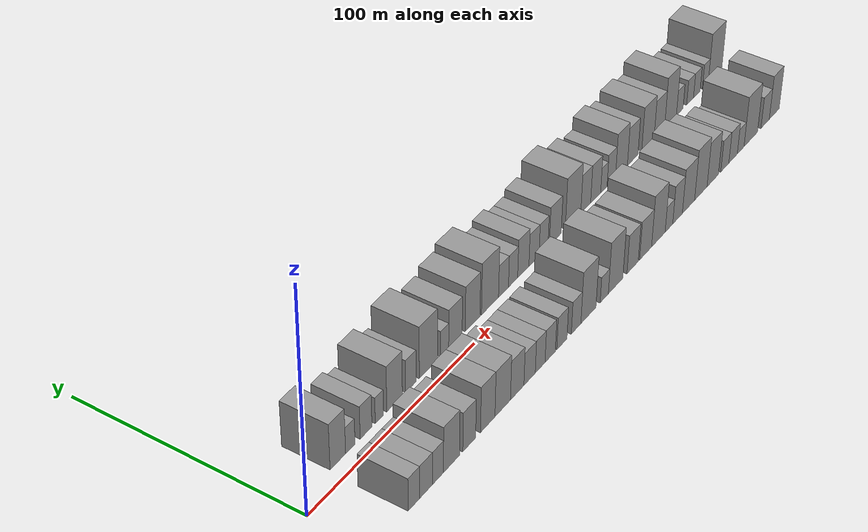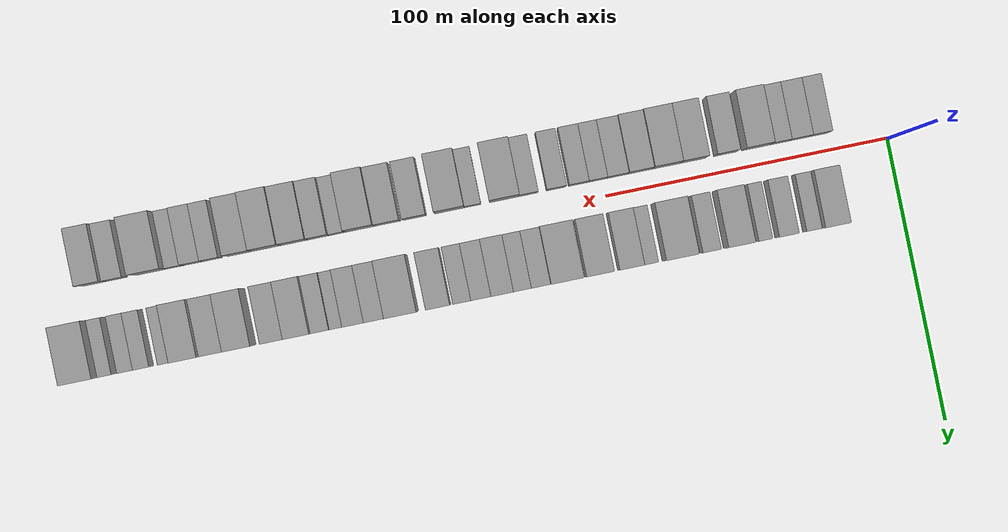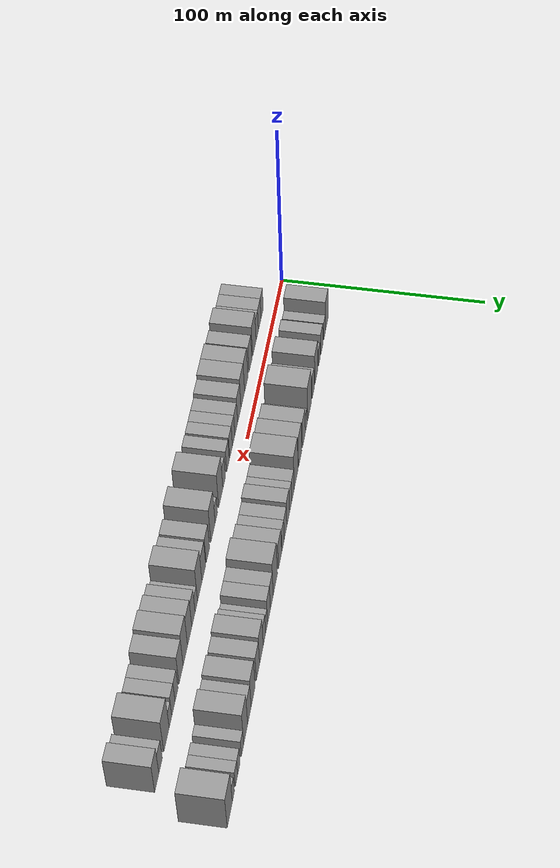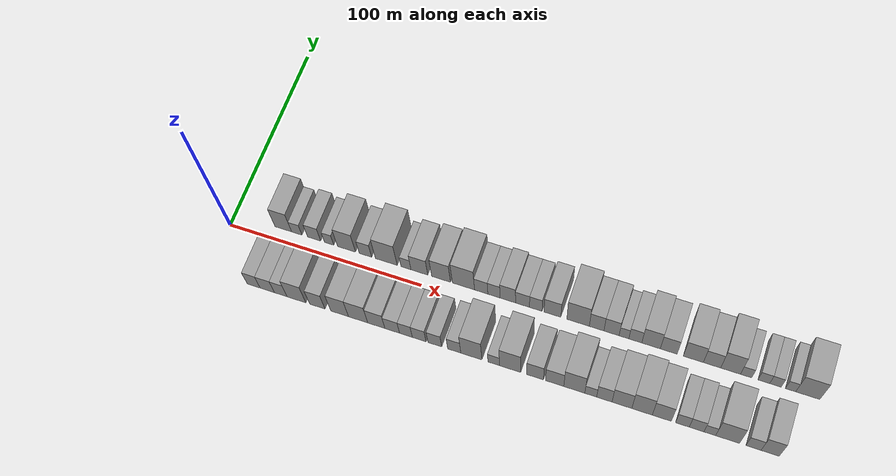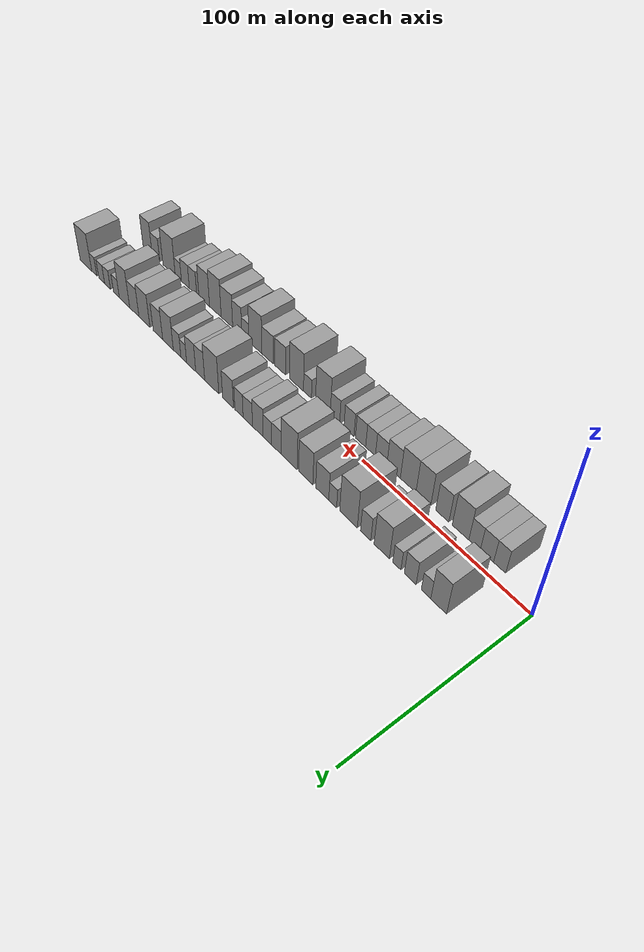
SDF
<sdf version="1.6">
 <world name="default">
  <scene>
   <sky><clouds><speed>12</speed></clouds></sky>
   <ambient>0.4 0.4 0.4 1</ambient>
   <background>0.7 0.7 0.7 1</background>
   <shadows>1</shadows>
  </scene>
  <gravity>0 0 -9.8066</gravity>
  <magnetic_field>6e-06 2.3e-05 -4.2e-05</magnetic_field>
  <physics default="0" name="default_physics" type="ode">
   <ode>
    <solver>
     <type>quick</type>
     <iters>10</iters>
     <sor>1.0</sor>
     <use_dynamic_moi_rescaling>0</use_dynamic_moi_rescaling>
    </solver>
    <constraints>
     <cfm>0</cfm>
     <erp>0.2</erp>
     <contact_max_correcting_vel>100</contact_max_correcting_vel>
     <contact_surface_layer>0.001</contact_surface_layer>
    </constraints>
   </ode>
   <max_step_size>0.004</max_step_size>
   <real_time_factor>1</real_time_factor>
   <real_time_update_rate>250</real_time_update_rate>
  </physics>
  <light name="sun" type="directional">
   <pose>0 0 10 0 0 0</pose>
   <diffuse>0.8 0.8 0.8 1</diffuse>
   <specular>0.2 0.2 0.2 1</specular>
   <attenuation>
    <range>1000</range>
    <constant>0.9</constant>
    <linear>0.01</linear>
    <quadratic>0.001</quadratic>
   </attenuation>
   <direction>-0.5 0.1 -0.9</direction>
  </light>
  <model name="building_1">
   <static>1</static>
   <pose>25.4437 16.0000 0 0.000000 0.000000 1.570796</pose>
   <link name="link">
    <pose>0 0 10.50 0 0 0</pose>
    <collision name="collision"><geometry><box><size>20.0000 8.8874 21.0000</size></box></geometry></collision>
    <visual name="visual">
     <cast_shadows>0</cast_shadows>
     <geometry><box><size>20.0000 8.8874 21.0000</size></box></geometry>
     <material>
      <script>
       <uri>model://grey_wall/materials/scripts</uri>
       <uri>model://grey_wall/materials/textures</uri>
       <name>vrc/grey_wall</name>
      </script>
     </material>
    </visual>
   </link>
  </model>
  <model name="building_2">
   <static>1</static>
   <pose>32.6078 16.0000 0 0.000000 0.000000 1.570796</pose>
   <link name="link">
    <pose>0 0 6.00 0 0 0</pose>
    <collision name="collision"><geometry><box><size>20.0000 5.4408 12.0000</size></box></geometry></collision>
    <visual name="visual">
     <cast_shadows>0</cast_shadows>
     <geometry><box><size>20.0000 5.4408 12.0000</size></box></geometry>
     <material>
      <script>
       <uri>model://grey_wall/materials/scripts</uri>
       <uri>model://grey_wall/materials/textures</uri>
       <name>vrc/grey_wall</name>
      </script>
     </material>
    </visual>
   </link>
  </model>
  <model name="building_3">
   <static>1</static>
   <pose>41.7750 16.0000 0 0.000000 0.000000 1.570796</pose>
   <link name="link">
    <pose>0 0 7.50 0 0 0</pose>
    <collision name="collision"><geometry><box><size>20.0000 6.8937 15.0000</size></box></geometry></collision>
    <visual name="visual">
     <cast_shadows>0</cast_shadows>
     <geometry><box><size>20.0000 6.8937 15.0000</size></box></geometry>
     <material>
      <script>
       <uri>model://grey_wall/materials/scripts</uri>
       <uri>model://grey_wall/materials/textures</uri>
       <name>vrc/grey_wall</name>
      </script>
     </material>
    </visual>
   </link>
  </model>
  <model name="building_4">
   <static>1</static>
   <pose>49.6552 16.0000 0 0.000000 0.000000 1.570796</pose>
   <link name="link">
    <pose>0 0 6.00 0 0 0</pose>
    <collision name="collision"><geometry><box><size>20.0000 4.8667 12.0000</size></box></geometry></collision>
    <visual name="visual">
     <cast_shadows>0</cast_shadows>
     <geometry><box><size>20.0000 4.8667 12.0000</size></box></geometry>
     <material>
      <script>
       <uri>model://grey_wall/materials/scripts</uri>
       <uri>model://grey_wall/materials/textures</uri>
       <name>vrc/grey_wall</name>
      </script>
     </material>
    </visual>
   </link>
  </model>
  <model name="building_5">
   <static>1</static>
   <pose>58.7909 16.0000 0 0.000000 0.000000 1.570796</pose>
   <link name="link">
    <pose>0 0 10.50 0 0 0</pose>
    <collision name="collision"><geometry><box><size>20.0000 9.4047 21.0000</size></box></geometry></collision>
    <visual name="visual">
     <cast_shadows>0</cast_shadows>
     <geometry><box><size>20.0000 9.4047 21.0000</size></box></geometry>
     <material>
      <script>
       <uri>model://grey_wall/materials/scripts</uri>
       <uri>model://grey_wall/materials/textures</uri>
       <name>vrc/grey_wall</name>
      </script>
     </material>
    </visual>
   </link>
  </model>
  <model name="building_6">
   <static>1</static>
   <pose>68.7100 16.0000 0 0.000000 0.000000 1.570796</pose>
   <link name="link">
    <pose>0 0 7.50 0 0 0</pose>
    <collision name="collision"><geometry><box><size>20.0000 6.4335 15.0000</size></box></geometry></collision>
    <visual name="visual">
     <cast_shadows>0</cast_shadows>
     <geometry><box><size>20.0000 6.4335 15.0000</size></box></geometry>
     <material>
      <script>
       <uri>model://grey_wall/materials/scripts</uri>
       <uri>model://grey_wall/materials/textures</uri>
       <name>vrc/grey_wall</name>
      </script>
     </material>
    </visual>
   </link>
  </model>
  <model name="building_7">
   <static>1</static>
   <pose>79.5794 16.0000 0 0.000000 0.000000 1.570796</pose>
   <link name="link">
    <pose>0 0 12.00 0 0 0</pose>
    <collision name="collision"><geometry><box><size>20.0000 11.3055 24.0000</size></box></geometry></collision>
    <visual name="visual">
     <cast_shadows>0</cast_shadows>
     <geometry><box><size>20.0000 11.3055 24.0000</size></box></geometry>
     <material>
      <script>
       <uri>model://grey_wall/materials/scripts</uri>
       <uri>model://grey_wall/materials/textures</uri>
       <name>vrc/grey_wall</name>
      </script>
     </material>
    </visual>
   </link>
  </model>
  <model name="building_8">
   <static>1</static>
   <pose>89.8133 16.0000 0 0.000000 0.000000 1.570796</pose>
   <link name="link">
    <pose>0 0 6.00 0 0 0</pose>
    <collision name="collision"><geometry><box><size>20.0000 5.1621 12.0000</size></box></geometry></collision>
    <visual name="visual">
     <cast_shadows>0</cast_shadows>
     <geometry><box><size>20.0000 5.1621 12.0000</size></box></geometry>
     <material>
      <script>
       <uri>model://grey_wall/materials/scripts</uri>
       <uri>model://grey_wall/materials/textures</uri>
       <name>vrc/grey_wall</name>
      </script>
     </material>
    </visual>
   </link>
  </model>
  <model name="building_9">
   <static>1</static>
   <pose>96.7259 16.0000 0 0.000000 0.000000 1.570796</pose>
   <link name="link">
    <pose>0 0 9.00 0 0 0</pose>
    <collision name="collision"><geometry><box><size>20.0000 8.6631 18.0000</size></box></geometry></collision>
    <visual name="visual">
     <cast_shadows>0</cast_shadows>
     <geometry><box><size>20.0000 8.6631 18.0000</size></box></geometry>
     <material>
      <script>
       <uri>model://grey_wall/materials/scripts</uri>
       <uri>model://grey_wall/materials/textures</uri>
       <name>vrc/grey_wall</name>
      </script>
     </material>
    </visual>
   </link>
  </model>
  <model name="building_10">
   <static>1</static>
   <pose>107.8845 16.0000 0 0.000000 0.000000 1.570796</pose>
   <link name="link">
    <pose>0 0 10.50 0 0 0</pose>
    <collision name="collision"><geometry><box><size>20.0000 9.6541 21.0000</size></box></geometry></collision>
    <visual name="visual">
     <cast_shadows>0</cast_shadows>
     <geometry><box><size>20.0000 9.6541 21.0000</size></box></geometry>
     <material>
      <script>
       <uri>model://grey_wall/materials/scripts</uri>
       <uri>model://grey_wall/materials/textures</uri>
       <name>vrc/grey_wall</name>
      </script>
     </material>
    </visual>
   </link>
  </model>
  <model name="building_11">
   <static>1</static>
   <pose>119.3945 16.0000 0 0.000000 0.000000 1.570796</pose>
   <link name="link">
    <pose>0 0 12.00 0 0 0</pose>
    <collision name="collision"><geometry><box><size>20.0000 11.3659 24.0000</size></box></geometry></collision>
    <visual name="visual">
     <cast_shadows>0</cast_shadows>
     <geometry><box><size>20.0000 11.3659 24.0000</size></box></geometry>
     <material>
      <script>
       <uri>model://grey_wall/materials/scripts</uri>
       <uri>model://grey_wall/materials/textures</uri>
       <name>vrc/grey_wall</name>
      </script>
     </material>
    </visual>
   </link>
  </model>
  <model name="building_12">
   <static>1</static>
   <pose>128.4563 16.0000 0 0.000000 0.000000 1.570796</pose>
   <link name="link">
    <pose>0 0 7.50 0 0 0</pose>
    <collision name="collision"><geometry><box><size>20.0000 6.7576 15.0000</size></box></geometry></collision>
    <visual name="visual">
     <cast_shadows>0</cast_shadows>
     <geometry><box><size>20.0000 6.7576 15.0000</size></box></geometry>
     <material>
      <script>
       <uri>model://grey_wall/materials/scripts</uri>
       <uri>model://grey_wall/materials/textures</uri>
       <name>vrc/grey_wall</name>
      </script>
     </material>
    </visual>
   </link>
  </model>
  <model name="building_13">
   <static>1</static>
   <pose>134.9618 16.0000 0 0.000000 0.000000 1.570796</pose>
   <link name="link">
    <pose>0 0 7.50 0 0 0</pose>
    <collision name="collision"><geometry><box><size>20.0000 6.2534 15.0000</size></box></geometry></collision>
    <visual name="visual">
     <cast_shadows>0</cast_shadows>
     <geometry><box><size>20.0000 6.2534 15.0000</size></box></geometry>
     <material>
      <script>
       <uri>model://grey_wall/materials/scripts</uri>
       <uri>model://grey_wall/materials/textures</uri>
       <name>vrc/grey_wall</name>
      </script>
     </material>
    </visual>
   </link>
  </model>
  <model name="building_14">
   <static>1</static>
   <pose>141.9988 16.0000 0 0.000000 0.000000 1.570796</pose>
   <link name="link">
    <pose>0 0 9.00 0 0 0</pose>
    <collision name="collision"><geometry><box><size>20.0000 7.8207 18.0000</size></box></geometry></collision>
    <visual name="visual">
     <cast_shadows>0</cast_shadows>
     <geometry><box><size>20.0000 7.8207 18.0000</size></box></geometry>
     <material>
      <script>
       <uri>model://grey_wall/materials/scripts</uri>
       <uri>model://grey_wall/materials/textures</uri>
       <name>vrc/grey_wall</name>
      </script>
     </material>
    </visual>
   </link>
  </model>
  <model name="building_15">
   <static>1</static>
   <pose>149.4410 16.0000 0 0.000000 0.000000 1.570796</pose>
   <link name="link">
    <pose>0 0 7.50 0 0 0</pose>
    <collision name="collision"><geometry><box><size>20.0000 7.0637 15.0000</size></box></geometry></collision>
    <visual name="visual">
     <cast_shadows>0</cast_shadows>
     <geometry><box><size>20.0000 7.0637 15.0000</size></box></geometry>
     <material>
      <script>
       <uri>model://grey_wall/materials/scripts</uri>
       <uri>model://grey_wall/materials/textures</uri>
       <name>vrc/grey_wall</name>
      </script>
     </material>
    </visual>
   </link>
  </model>
  <model name="building_16">
   <static>1</static>
   <pose>156.1337 16.0000 0 0.000000 0.000000 1.570796</pose>
   <link name="link">
    <pose>0 0 7.50 0 0 0</pose>
    <collision name="collision"><geometry><box><size>20.0000 6.3218 15.0000</size></box></geometry></collision>
    <visual name="visual">
     <cast_shadows>0</cast_shadows>
     <geometry><box><size>20.0000 6.3218 15.0000</size></box></geometry>
     <material>
      <script>
       <uri>model://grey_wall/materials/scripts</uri>
       <uri>model://grey_wall/materials/textures</uri>
       <name>vrc/grey_wall</name>
      </script>
     </material>
    </visual>
   </link>
  </model>
  <model name="building_17">
   <static>1</static>
   <pose>164.5155 16.0000 0 0.000000 0.000000 1.570796</pose>
   <link name="link">
    <pose>0 0 9.00 0 0 0</pose>
    <collision name="collision"><geometry><box><size>20.0000 8.4418 18.0000</size></box></geometry></collision>
    <visual name="visual">
     <cast_shadows>0</cast_shadows>
     <geometry><box><size>20.0000 8.4418 18.0000</size></box></geometry>
     <material>
      <script>
       <uri>model://grey_wall/materials/scripts</uri>
       <uri>model://grey_wall/materials/textures</uri>
       <name>vrc/grey_wall</name>
      </script>
     </material>
    </visual>
   </link>
  </model>
  <model name="building_18">
   <static>1</static>
   <pose>177.3645 16.0000 0 0.000000 0.000000 1.570796</pose>
   <link name="link">
    <pose>0 0 12.00 0 0 0</pose>
    <collision name="collision"><geometry><box><size>20.0000 11.2562 24.0000</size></box></geometry></collision>
    <visual name="visual">
     <cast_shadows>0</cast_shadows>
     <geometry><box><size>20.0000 11.2562 24.0000</size></box></geometry>
     <material>
      <script>
       <uri>model://grey_wall/materials/scripts</uri>
       <uri>model://grey_wall/materials/textures</uri>
       <name>vrc/grey_wall</name>
      </script>
     </material>
    </visual>
   </link>
  </model>
  <model name="building_19">
   <static>1</static>
   <pose>186.6468 16.0000 0 0.000000 0.000000 1.570796</pose>
   <link name="link">
    <pose>0 0 9.00 0 0 0</pose>
    <collision name="collision"><geometry><box><size>20.0000 7.3085 18.0000</size></box></geometry></collision>
    <visual name="visual">
     <cast_shadows>0</cast_shadows>
     <geometry><box><size>20.0000 7.3085 18.0000</size></box></geometry>
     <material>
      <script>
       <uri>model://grey_wall/materials/scripts</uri>
       <uri>model://grey_wall/materials/textures</uri>
       <name>vrc/grey_wall</name>
      </script>
     </material>
    </visual>
   </link>
  </model>
  <model name="building_20">
   <static>1</static>
   <pose>194.0497 16.0000 0 0.000000 0.000000 1.570796</pose>
   <link name="link">
    <pose>0 0 9.00 0 0 0</pose>
    <collision name="collision"><geometry><box><size>20.0000 7.4973 18.0000</size></box></geometry></collision>
    <visual name="visual">
     <cast_shadows>0</cast_shadows>
     <geometry><box><size>20.0000 7.4973 18.0000</size></box></geometry>
     <material>
      <script>
       <uri>model://grey_wall/materials/scripts</uri>
       <uri>model://grey_wall/materials/textures</uri>
       <name>vrc/grey_wall</name>
      </script>
     </material>
    </visual>
   </link>
  </model>
  <model name="building_21">
   <static>1</static>
   <pose>200.2212 16.0000 0 0.000000 0.000000 1.570796</pose>
   <link name="link">
    <pose>0 0 6.00 0 0 0</pose>
    <collision name="collision"><geometry><box><size>20.0000 4.8457 12.0000</size></box></geometry></collision>
    <visual name="visual">
     <cast_shadows>0</cast_shadows>
     <geometry><box><size>20.0000 4.8457 12.0000</size></box></geometry>
     <material>
      <script>
       <uri>model://grey_wall/materials/scripts</uri>
       <uri>model://grey_wall/materials/textures</uri>
       <name>vrc/grey_wall</name>
      </script>
     </material>
    </visual>
   </link>
  </model>
  <model name="building_22">
   <static>1</static>
   <pose>205.8460 16.0000 0 0.000000 0.000000 1.570796</pose>
   <link name="link">
    <pose>0 0 7.50 0 0 0</pose>
    <collision name="collision"><geometry><box><size>20.0000 6.4039 15.0000</size></box></geometry></collision>
    <visual name="visual">
     <cast_shadows>0</cast_shadows>
     <geometry><box><size>20.0000 6.4039 15.0000</size></box></geometry>
     <material>
      <script>
       <uri>model://grey_wall/materials/scripts</uri>
       <uri>model://grey_wall/materials/textures</uri>
       <name>vrc/grey_wall</name>
      </script>
     </material>
    </visual>
   </link>
  </model>
  <model name="building_23">
   <static>1</static>
   <pose>213.6268 16.0000 0 0.000000 0.000000 1.570796</pose>
   <link name="link">
    <pose>0 0 10.50 0 0 0</pose>
    <collision name="collision"><geometry><box><size>20.0000 9.1577 21.0000</size></box></geometry></collision>
    <visual name="visual">
     <cast_shadows>0</cast_shadows>
     <geometry><box><size>20.0000 9.1577 21.0000</size></box></geometry>
     <material>
      <script>
       <uri>model://grey_wall/materials/scripts</uri>
       <uri>model://grey_wall/materials/textures</uri>
       <name>vrc/grey_wall</name>
      </script>
     </material>
    </visual>
   </link>
  </model>
  <model name="building_24">
   <static>1</static>
   <pose>222.3329 16.0000 0 0.000000 0.000000 1.570796</pose>
   <link name="link">
    <pose>0 0 9.00 0 0 0</pose>
    <collision name="collision"><geometry><box><size>20.0000 8.2544 18.0000</size></box></geometry></collision>
    <visual name="visual">
     <cast_shadows>0</cast_shadows>
     <geometry><box><size>20.0000 8.2544 18.0000</size></box></geometry>
     <material>
      <script>
       <uri>model://grey_wall/materials/scripts</uri>
       <uri>model://grey_wall/materials/textures</uri>
       <name>vrc/grey_wall</name>
      </script>
     </material>
    </visual>
   </link>
  </model>
  <model name="building_25">
   <static>1</static>
   <pose>234.3625 16.0000 0 0.000000 0.000000 1.570796</pose>
   <link name="link">
    <pose>0 0 10.50 0 0 0</pose>
    <collision name="collision"><geometry><box><size>20.0000 9.8048 21.0000</size></box></geometry></collision>
    <visual name="visual">
     <cast_shadows>0</cast_shadows>
     <geometry><box><size>20.0000 9.8048 21.0000</size></box></geometry>
     <material>
      <script>
       <uri>model://grey_wall/materials/scripts</uri>
       <uri>model://grey_wall/materials/textures</uri>
       <name>vrc/grey_wall</name>
      </script>
     </material>
    </visual>
   </link>
  </model>
  <model name="building_26">
   <static>1</static>
   <pose>243.4888 16.0000 0 0.000000 0.000000 1.570796</pose>
   <link name="link">
    <pose>0 0 9.00 0 0 0</pose>
    <collision name="collision"><geometry><box><size>20.0000 8.4480 18.0000</size></box></geometry></collision>
    <visual name="visual">
     <cast_shadows>0</cast_shadows>
     <geometry><box><size>20.0000 8.4480 18.0000</size></box></geometry>
     <material>
      <script>
       <uri>model://grey_wall/materials/scripts</uri>
       <uri>model://grey_wall/materials/textures</uri>
       <name>vrc/grey_wall</name>
      </script>
     </material>
    </visual>
   </link>
  </model>
  <model name="building_27">
   <static>1</static>
   <pose>252.5334 16.0000 0 0.000000 0.000000 1.570796</pose>
   <link name="link">
    <pose>0 0 12.00 0 0 0</pose>
    <collision name="collision"><geometry><box><size>20.0000 9.6411 24.0000</size></box></geometry></collision>
    <visual name="visual">
     <cast_shadows>0</cast_shadows>
     <geometry><box><size>20.0000 9.6411 24.0000</size></box></geometry>
     <material>
      <script>
       <uri>model://grey_wall/materials/scripts</uri>
       <uri>model://grey_wall/materials/textures</uri>
       <name>vrc/grey_wall</name>
      </script>
     </material>
    </visual>
   </link>
  </model>
  <model name="building_28">
   <static>1</static>
   <pose>260.0871 16.0000 0 0.000000 0.000000 1.570796</pose>
   <link name="link">
    <pose>0 0 6.00 0 0 0</pose>
    <collision name="collision"><geometry><box><size>20.0000 5.4663 12.0000</size></box></geometry></collision>
    <visual name="visual">
     <cast_shadows>0</cast_shadows>
     <geometry><box><size>20.0000 5.4663 12.0000</size></box></geometry>
     <material>
      <script>
       <uri>model://grey_wall/materials/scripts</uri>
       <uri>model://grey_wall/materials/textures</uri>
       <name>vrc/grey_wall</name>
      </script>
     </material>
    </visual>
   </link>
  </model>
  <model name="building_29">
   <static>1</static>
   <pose>268.6604 16.0000 0 0.000000 0.000000 1.570796</pose>
   <link name="link">
    <pose>0 0 6.00 0 0 0</pose>
    <collision name="collision"><geometry><box><size>20.0000 5.6803 12.0000</size></box></geometry></collision>
    <visual name="visual">
     <cast_shadows>0</cast_shadows>
     <geometry><box><size>20.0000 5.6803 12.0000</size></box></geometry>
     <material>
      <script>
       <uri>model://grey_wall/materials/scripts</uri>
       <uri>model://grey_wall/materials/textures</uri>
       <name>vrc/grey_wall</name>
      </script>
     </material>
    </visual>
   </link>
  </model>
  <model name="building_30">
   <static>1</static>
   <pose>274.2593 16.0000 0 0.000000 0.000000 1.570796</pose>
   <link name="link">
    <pose>0 0 6.00 0 0 0</pose>
    <collision name="collision"><geometry><box><size>20.0000 5.5173 12.0000</size></box></geometry></collision>
    <visual name="visual">
     <cast_shadows>0</cast_shadows>
     <geometry><box><size>20.0000 5.5173 12.0000</size></box></geometry>
     <material>
      <script>
       <uri>model://grey_wall/materials/scripts</uri>
       <uri>model://grey_wall/materials/textures</uri>
       <name>vrc/grey_wall</name>
      </script>
     </material>
    </visual>
   </link>
  </model>
  <model name="building_31">
   <static>1</static>
   <pose>281.4909 16.0000 0 0.000000 0.000000 1.570796</pose>
   <link name="link">
    <pose>0 0 6.00 0 0 0</pose>
    <collision name="collision"><geometry><box><size>20.0000 4.9458 12.0000</size></box></geometry></collision>
    <visual name="visual">
     <cast_shadows>0</cast_shadows>
     <geometry><box><size>20.0000 4.9458 12.0000</size></box></geometry>
     <material>
      <script>
       <uri>model://grey_wall/materials/scripts</uri>
       <uri>model://grey_wall/materials/textures</uri>
       <name>vrc/grey_wall</name>
      </script>
     </material>
    </visual>
   </link>
  </model>
  <model name="building_32">
   <static>1</static>
   <pose>289.7567 16.0000 0 0.000000 0.000000 1.570796</pose>
   <link name="link">
    <pose>0 0 12.00 0 0 0</pose>
    <collision name="collision"><geometry><box><size>20.0000 11.5858 24.0000</size></box></geometry></collision>
    <visual name="visual">
     <cast_shadows>0</cast_shadows>
     <geometry><box><size>20.0000 11.5858 24.0000</size></box></geometry>
     <material>
      <script>
       <uri>model://grey_wall/materials/scripts</uri>
       <uri>model://grey_wall/materials/textures</uri>
       <name>vrc/grey_wall</name>
      </script>
     </material>
    </visual>
   </link>
  </model>
  <model name="building_33">
   <static>1</static>
   <pose>23.3686 -16.0000 0 0.000000 0.000000 1.570796</pose>
   <link name="link">
    <pose>0 0 7.50 0 0 0</pose>
    <collision name="collision"><geometry><box><size>20.0000 6.7372 15.0000</size></box></geometry></collision>
    <visual name="visual">
     <cast_shadows>0</cast_shadows>
     <geometry><box><size>20.0000 6.7372 15.0000</size></box></geometry>
     <material>
      <script>
       <uri>model://grey_wall/materials/scripts</uri>
       <uri>model://grey_wall/materials/textures</uri>
       <name>vrc/grey_wall</name>
      </script>
     </material>
    </visual>
   </link>
  </model>
  <model name="building_34">
   <static>1</static>
   <pose>30.4700 -16.0000 0 0.000000 0.000000 1.570796</pose>
   <link name="link">
    <pose>0 0 7.50 0 0 0</pose>
    <collision name="collision"><geometry><box><size>20.0000 7.4657 15.0000</size></box></geometry></collision>
    <visual name="visual">
     <cast_shadows>0</cast_shadows>
     <geometry><box><size>20.0000 7.4657 15.0000</size></box></geometry>
     <material>
      <script>
       <uri>model://grey_wall/materials/scripts</uri>
       <uri>model://grey_wall/materials/textures</uri>
       <name>vrc/grey_wall</name>
      </script>
     </material>
    </visual>
   </link>
  </model>
  <model name="building_35">
   <static>1</static>
   <pose>37.4806 -16.0000 0 0.000000 0.000000 1.570796</pose>
   <link name="link">
    <pose>0 0 7.50 0 0 0</pose>
    <collision name="collision"><geometry><box><size>20.0000 6.5554 15.0000</size></box></geometry></collision>
    <visual name="visual">
     <cast_shadows>0</cast_shadows>
     <geometry><box><size>20.0000 6.5554 15.0000</size></box></geometry>
     <material>
      <script>
       <uri>model://grey_wall/materials/scripts</uri>
       <uri>model://grey_wall/materials/textures</uri>
       <name>vrc/grey_wall</name>
      </script>
     </material>
    </visual>
   </link>
  </model>
  <model name="building_36">
   <static>1</static>
   <pose>45.6240 -16.0000 0 0.000000 0.000000 1.570796</pose>
   <link name="link">
    <pose>0 0 10.50 0 0 0</pose>
    <collision name="collision"><geometry><box><size>20.0000 9.7315 21.0000</size></box></geometry></collision>
    <visual name="visual">
     <cast_shadows>0</cast_shadows>
     <geometry><box><size>20.0000 9.7315 21.0000</size></box></geometry>
     <material>
      <script>
       <uri>model://grey_wall/materials/scripts</uri>
       <uri>model://grey_wall/materials/textures</uri>
       <name>vrc/grey_wall</name>
      </script>
     </material>
    </visual>
   </link>
  </model>
  <model name="building_37">
   <static>1</static>
   <pose>56.4451 -16.0000 0 0.000000 0.000000 1.570796</pose>
   <link name="link">
    <pose>0 0 9.00 0 0 0</pose>
    <collision name="collision"><geometry><box><size>20.0000 7.9107 18.0000</size></box></geometry></collision>
    <visual name="visual">
     <cast_shadows>0</cast_shadows>
     <geometry><box><size>20.0000 7.9107 18.0000</size></box></geometry>
     <material>
      <script>
       <uri>model://grey_wall/materials/scripts</uri>
       <uri>model://grey_wall/materials/textures</uri>
       <name>vrc/grey_wall</name>
      </script>
     </material>
    </visual>
   </link>
  </model>
  <model name="building_38">
   <static>1</static>
   <pose>67.9469 -16.0000 0 0.000000 0.000000 1.570796</pose>
   <link name="link">
    <pose>0 0 10.50 0 0 0</pose>
    <collision name="collision"><geometry><box><size>20.0000 9.0927 21.0000</size></box></geometry></collision>
    <visual name="visual">
     <cast_shadows>0</cast_shadows>
     <geometry><box><size>20.0000 9.0927 21.0000</size></box></geometry>
     <material>
      <script>
       <uri>model://grey_wall/materials/scripts</uri>
       <uri>model://grey_wall/materials/textures</uri>
       <name>vrc/grey_wall</name>
      </script>
     </material>
    </visual>
   </link>
  </model>
  <model name="building_39">
   <static>1</static>
   <pose>77.4283 -16.0000 0 0.000000 0.000000 1.570796</pose>
   <link name="link">
    <pose>0 0 10.50 0 0 0</pose>
    <collision name="collision"><geometry><box><size>20.0000 9.8703 21.0000</size></box></geometry></collision>
    <visual name="visual">
     <cast_shadows>0</cast_shadows>
     <geometry><box><size>20.0000 9.8703 21.0000</size></box></geometry>
     <material>
      <script>
       <uri>model://grey_wall/materials/scripts</uri>
       <uri>model://grey_wall/materials/textures</uri>
       <name>vrc/grey_wall</name>
      </script>
     </material>
    </visual>
   </link>
  </model>
  <model name="building_40">
   <static>1</static>
   <pose>86.7238 -16.0000 0 0.000000 0.000000 1.570796</pose>
   <link name="link">
    <pose>0 0 9.00 0 0 0</pose>
    <collision name="collision"><geometry><box><size>20.0000 8.7206 18.0000</size></box></geometry></collision>
    <visual name="visual">
     <cast_shadows>0</cast_shadows>
     <geometry><box><size>20.0000 8.7206 18.0000</size></box></geometry>
     <material>
      <script>
       <uri>model://grey_wall/materials/scripts</uri>
       <uri>model://grey_wall/materials/textures</uri>
       <name>vrc/grey_wall</name>
      </script>
     </material>
    </visual>
   </link>
  </model>
  <model name="building_41">
   <static>1</static>
   <pose>94.8194 -16.0000 0 0.000000 0.000000 1.570796</pose>
   <link name="link">
    <pose>0 0 7.50 0 0 0</pose>
    <collision name="collision"><geometry><box><size>20.0000 7.4705 15.0000</size></box></geometry></collision>
    <visual name="visual">
     <cast_shadows>0</cast_shadows>
     <geometry><box><size>20.0000 7.4705 15.0000</size></box></geometry>
     <material>
      <script>
       <uri>model://grey_wall/materials/scripts</uri>
       <uri>model://grey_wall/materials/textures</uri>
       <name>vrc/grey_wall</name>
      </script>
     </material>
    </visual>
   </link>
  </model>
  <model name="building_42">
   <static>1</static>
   <pose>101.7978 -16.0000 0 0.000000 0.000000 1.570796</pose>
   <link name="link">
    <pose>0 0 7.50 0 0 0</pose>
    <collision name="collision"><geometry><box><size>20.0000 6.4863 15.0000</size></box></geometry></collision>
    <visual name="visual">
     <cast_shadows>0</cast_shadows>
     <geometry><box><size>20.0000 6.4863 15.0000</size></box></geometry>
     <material>
      <script>
       <uri>model://grey_wall/materials/scripts</uri>
       <uri>model://grey_wall/materials/textures</uri>
       <name>vrc/grey_wall</name>
      </script>
     </material>
    </visual>
   </link>
  </model>
  <model name="building_43">
   <static>1</static>
   <pose>108.5022 -16.0000 0 0.000000 0.000000 1.570796</pose>
   <link name="link">
    <pose>0 0 7.50 0 0 0</pose>
    <collision name="collision"><geometry><box><size>20.0000 6.9226 15.0000</size></box></geometry></collision>
    <visual name="visual">
     <cast_shadows>0</cast_shadows>
     <geometry><box><size>20.0000 6.9226 15.0000</size></box></geometry>
     <material>
      <script>
       <uri>model://grey_wall/materials/scripts</uri>
       <uri>model://grey_wall/materials/textures</uri>
       <name>vrc/grey_wall</name>
      </script>
     </material>
    </visual>
   </link>
  </model>
  <model name="building_44">
   <static>1</static>
   <pose>116.4067 -16.0000 0 0.000000 0.000000 1.570796</pose>
   <link name="link">
    <pose>0 0 7.50 0 0 0</pose>
    <collision name="collision"><geometry><box><size>20.0000 6.8863 15.0000</size></box></geometry></collision>
    <visual name="visual">
     <cast_shadows>0</cast_shadows>
     <geometry><box><size>20.0000 6.8863 15.0000</size></box></geometry>
     <material>
      <script>
       <uri>model://grey_wall/materials/scripts</uri>
       <uri>model://grey_wall/materials/textures</uri>
       <name>vrc/grey_wall</name>
      </script>
     </material>
    </visual>
   </link>
  </model>
  <model name="building_45">
   <static>1</static>
   <pose>126.1529 -16.0000 0 0.000000 0.000000 1.570796</pose>
   <link name="link">
    <pose>0 0 7.50 0 0 0</pose>
    <collision name="collision"><geometry><box><size>20.0000 6.6061 15.0000</size></box></geometry></collision>
    <visual name="visual">
     <cast_shadows>0</cast_shadows>
     <geometry><box><size>20.0000 6.6061 15.0000</size></box></geometry>
     <material>
      <script>
       <uri>model://grey_wall/materials/scripts</uri>
       <uri>model://grey_wall/materials/textures</uri>
       <name>vrc/grey_wall</name>
      </script>
     </material>
    </visual>
   </link>
  </model>
  <model name="building_46">
   <static>1</static>
   <pose>134.7274 -16.0000 0 0.000000 0.000000 1.570796</pose>
   <link name="link">
    <pose>0 0 12.00 0 0 0</pose>
    <collision name="collision"><geometry><box><size>20.0000 10.5429 24.0000</size></box></geometry></collision>
    <visual name="visual">
     <cast_shadows>0</cast_shadows>
     <geometry><box><size>20.0000 10.5429 24.0000</size></box></geometry>
     <material>
      <script>
       <uri>model://grey_wall/materials/scripts</uri>
       <uri>model://grey_wall/materials/textures</uri>
       <name>vrc/grey_wall</name>
      </script>
     </material>
    </visual>
   </link>
  </model>
  <model name="building_47">
   <static>1</static>
   <pose>145.9090 -16.0000 0 0.000000 0.000000 1.570796</pose>
   <link name="link">
    <pose>0 0 6.00 0 0 0</pose>
    <collision name="collision"><geometry><box><size>20.0000 5.8205 12.0000</size></box></geometry></collision>
    <visual name="visual">
     <cast_shadows>0</cast_shadows>
     <geometry><box><size>20.0000 5.8205 12.0000</size></box></geometry>
     <material>
      <script>
       <uri>model://grey_wall/materials/scripts</uri>
       <uri>model://grey_wall/materials/textures</uri>
       <name>vrc/grey_wall</name>
      </script>
     </material>
    </visual>
   </link>
  </model>
  <model name="building_48">
   <static>1</static>
   <pose>154.0568 -16.0000 0 0.000000 0.000000 1.570796</pose>
   <link name="link">
    <pose>0 0 12.00 0 0 0</pose>
    <collision name="collision"><geometry><box><size>20.0000 10.4750 24.0000</size></box></geometry></collision>
    <visual name="visual">
     <cast_shadows>0</cast_shadows>
     <geometry><box><size>20.0000 10.4750 24.0000</size></box></geometry>
     <material>
      <script>
       <uri>model://grey_wall/materials/scripts</uri>
       <uri>model://grey_wall/materials/textures</uri>
       <name>vrc/grey_wall</name>
      </script>
     </material>
    </visual>
   </link>
  </model>
  <model name="building_49">
   <static>1</static>
   <pose>166.4343 -16.0000 0 0.000000 0.000000 1.570796</pose>
   <link name="link">
    <pose>0 0 9.00 0 0 0</pose>
    <collision name="collision"><geometry><box><size>20.0000 8.2800 18.0000</size></box></geometry></collision>
    <visual name="visual">
     <cast_shadows>0</cast_shadows>
     <geometry><box><size>20.0000 8.2800 18.0000</size></box></geometry>
     <material>
      <script>
       <uri>model://grey_wall/materials/scripts</uri>
       <uri>model://grey_wall/materials/textures</uri>
       <name>vrc/grey_wall</name>
      </script>
     </material>
    </visual>
   </link>
  </model>
  <model name="building_50">
   <static>1</static>
   <pose>176.0596 -16.0000 0 0.000000 0.000000 1.570796</pose>
   <link name="link">
    <pose>0 0 9.00 0 0 0</pose>
    <collision name="collision"><geometry><box><size>20.0000 8.9707 18.0000</size></box></geometry></collision>
    <visual name="visual">
     <cast_shadows>0</cast_shadows>
     <geometry><box><size>20.0000 8.9707 18.0000</size></box></geometry>
     <material>
      <script>
       <uri>model://grey_wall/materials/scripts</uri>
       <uri>model://grey_wall/materials/textures</uri>
       <name>vrc/grey_wall</name>
      </script>
     </material>
    </visual>
   </link>
  </model>
  <model name="building_51">
   <static>1</static>
   <pose>185.6856 -16.0000 0 0.000000 0.000000 1.570796</pose>
   <link name="link">
    <pose>0 0 12.00 0 0 0</pose>
    <collision name="collision"><geometry><box><size>20.0000 10.2813 24.0000</size></box></geometry></collision>
    <visual name="visual">
     <cast_shadows>0</cast_shadows>
     <geometry><box><size>20.0000 10.2813 24.0000</size></box></geometry>
     <material>
      <script>
       <uri>model://grey_wall/materials/scripts</uri>
       <uri>model://grey_wall/materials/textures</uri>
       <name>vrc/grey_wall</name>
      </script>
     </material>
    </visual>
   </link>
  </model>
  <model name="building_52">
   <static>1</static>
   <pose>193.7229 -16.0000 0 0.000000 0.000000 1.570796</pose>
   <link name="link">
    <pose>0 0 6.00 0 0 0</pose>
    <collision name="collision"><geometry><box><size>20.0000 5.7933 12.0000</size></box></geometry></collision>
    <visual name="visual">
     <cast_shadows>0</cast_shadows>
     <geometry><box><size>20.0000 5.7933 12.0000</size></box></geometry>
     <material>
      <script>
       <uri>model://grey_wall/materials/scripts</uri>
       <uri>model://grey_wall/materials/textures</uri>
       <name>vrc/grey_wall</name>
      </script>
     </material>
    </visual>
   </link>
  </model>
  <model name="building_53">
   <static>1</static>
   <pose>200.3616 -16.0000 0 0.000000 0.000000 1.570796</pose>
   <link name="link">
    <pose>0 0 9.00 0 0 0</pose>
    <collision name="collision"><geometry><box><size>20.0000 7.4841 18.0000</size></box></geometry></collision>
    <visual name="visual">
     <cast_shadows>0</cast_shadows>
     <geometry><box><size>20.0000 7.4841 18.0000</size></box></geometry>
     <material>
      <script>
       <uri>model://grey_wall/materials/scripts</uri>
       <uri>model://grey_wall/materials/textures</uri>
       <name>vrc/grey_wall</name>
      </script>
     </material>
    </visual>
   </link>
  </model>
  <model name="building_54">
   <static>1</static>
   <pose>208.9121 -16.0000 0 0.000000 0.000000 1.570796</pose>
   <link name="link">
    <pose>0 0 10.50 0 0 0</pose>
    <collision name="collision"><geometry><box><size>20.0000 9.6168 21.0000</size></box></geometry></collision>
    <visual name="visual">
     <cast_shadows>0</cast_shadows>
     <geometry><box><size>20.0000 9.6168 21.0000</size></box></geometry>
     <material>
      <script>
       <uri>model://grey_wall/materials/scripts</uri>
       <uri>model://grey_wall/materials/textures</uri>
       <name>vrc/grey_wall</name>
      </script>
     </material>
    </visual>
   </link>
  </model>
  <model name="building_55">
   <static>1</static>
   <pose>218.6758 -16.0000 0 0.000000 0.000000 1.570796</pose>
   <link name="link">
    <pose>0 0 12.00 0 0 0</pose>
    <collision name="collision"><geometry><box><size>20.0000 9.9107 24.0000</size></box></geometry></collision>
    <visual name="visual">
     <cast_shadows>0</cast_shadows>
     <geometry><box><size>20.0000 9.9107 24.0000</size></box></geometry>
     <material>
      <script>
       <uri>model://grey_wall/materials/scripts</uri>
       <uri>model://grey_wall/materials/textures</uri>
       <name>vrc/grey_wall</name>
      </script>
     </material>
    </visual>
   </link>
  </model>
  <model name="building_56">
   <static>1</static>
   <pose>228.2304 -16.0000 0 0.000000 0.000000 1.570796</pose>
   <link name="link">
    <pose>0 0 10.50 0 0 0</pose>
    <collision name="collision"><geometry><box><size>20.0000 9.1983 21.0000</size></box></geometry></collision>
    <visual name="visual">
     <cast_shadows>0</cast_shadows>
     <geometry><box><size>20.0000 9.1983 21.0000</size></box></geometry>
     <material>
      <script>
       <uri>model://grey_wall/materials/scripts</uri>
       <uri>model://grey_wall/materials/textures</uri>
       <name>vrc/grey_wall</name>
      </script>
     </material>
    </visual>
   </link>
  </model>
  <model name="building_57">
   <static>1</static>
   <pose>238.1071 -16.0000 0 0.000000 0.000000 1.570796</pose>
   <link name="link">
    <pose>0 0 7.50 0 0 0</pose>
    <collision name="collision"><geometry><box><size>20.0000 6.5552 15.0000</size></box></geometry></collision>
    <visual name="visual">
     <cast_shadows>0</cast_shadows>
     <geometry><box><size>20.0000 6.5552 15.0000</size></box></geometry>
     <material>
      <script>
       <uri>model://grey_wall/materials/scripts</uri>
       <uri>model://grey_wall/materials/textures</uri>
       <name>vrc/grey_wall</name>
      </script>
     </material>
    </visual>
   </link>
  </model>
  <model name="building_58">
   <static>1</static>
   <pose>244.9085 -16.0000 0 0.000000 0.000000 1.570796</pose>
   <link name="link">
    <pose>0 0 7.50 0 0 0</pose>
    <collision name="collision"><geometry><box><size>20.0000 7.0475 15.0000</size></box></geometry></collision>
    <visual name="visual">
     <cast_shadows>0</cast_shadows>
     <geometry><box><size>20.0000 7.0475 15.0000</size></box></geometry>
     <material>
      <script>
       <uri>model://grey_wall/materials/scripts</uri>
       <uri>model://grey_wall/materials/textures</uri>
       <name>vrc/grey_wall</name>
      </script>
     </material>
    </visual>
   </link>
  </model>
  <model name="building_59">
   <static>1</static>
   <pose>251.2257 -16.0000 0 0.000000 0.000000 1.570796</pose>
   <link name="link">
    <pose>0 0 6.00 0 0 0</pose>
    <collision name="collision"><geometry><box><size>20.0000 5.5869 12.0000</size></box></geometry></collision>
    <visual name="visual">
     <cast_shadows>0</cast_shadows>
     <geometry><box><size>20.0000 5.5869 12.0000</size></box></geometry>
     <material>
      <script>
       <uri>model://grey_wall/materials/scripts</uri>
       <uri>model://grey_wall/materials/textures</uri>
       <name>vrc/grey_wall</name>
      </script>
     </material>
    </visual>
   </link>
  </model>
  <model name="building_60">
   <static>1</static>
   <pose>259.7210 -16.0000 0 0.000000 0.000000 1.570796</pose>
   <link name="link">
    <pose>0 0 12.00 0 0 0</pose>
    <collision name="collision"><geometry><box><size>20.0000 11.4037 24.0000</size></box></geometry></collision>
    <visual name="visual">
     <cast_shadows>0</cast_shadows>
     <geometry><box><size>20.0000 11.4037 24.0000</size></box></geometry>
     <material>
      <script>
       <uri>model://grey_wall/materials/scripts</uri>
       <uri>model://grey_wall/materials/textures</uri>
       <name>vrc/grey_wall</name>
      </script>
     </material>
    </visual>
   </link>
  </model>
  <model name="building_61">
   <static>1</static>
   <pose>271.9948 -16.0000 0 0.000000 0.000000 1.570796</pose>
   <link name="link">
    <pose>0 0 7.50 0 0 0</pose>
    <collision name="collision"><geometry><box><size>20.0000 7.1439 15.0000</size></box></geometry></collision>
    <visual name="visual">
     <cast_shadows>0</cast_shadows>
     <geometry><box><size>20.0000 7.1439 15.0000</size></box></geometry>
     <material>
      <script>
       <uri>model://grey_wall/materials/scripts</uri>
       <uri>model://grey_wall/materials/textures</uri>
       <name>vrc/grey_wall</name>
      </script>
     </material>
    </visual>
   </link>
  </model>
  <model name="building_62">
   <static>1</static>
   <pose>279.8721 -16.0000 0 0.000000 0.000000 1.570796</pose>
   <link name="link">
    <pose>0 0 10.50 0 0 0</pose>
    <collision name="collision"><geometry><box><size>20.0000 8.6106 21.0000</size></box></geometry></collision>
    <visual name="visual">
     <cast_shadows>0</cast_shadows>
     <geometry><box><size>20.0000 8.6106 21.0000</size></box></geometry>
     <material>
      <script>
       <uri>model://grey_wall/materials/scripts</uri>
       <uri>model://grey_wall/materials/textures</uri>
       <name>vrc/grey_wall</name>
      </script>
     </material>
    </visual>
   </link>
  </model>
 </world>
</sdf>
